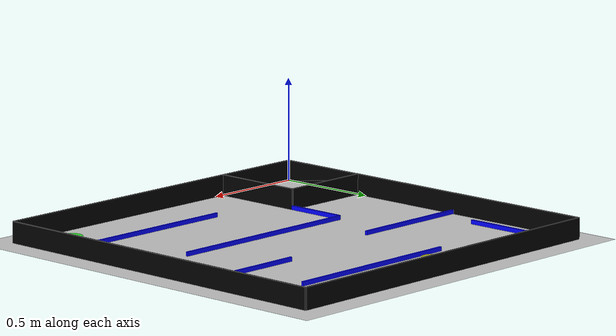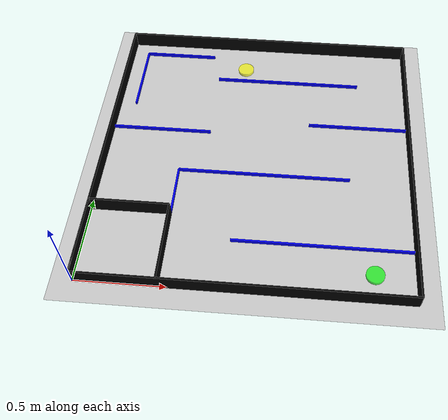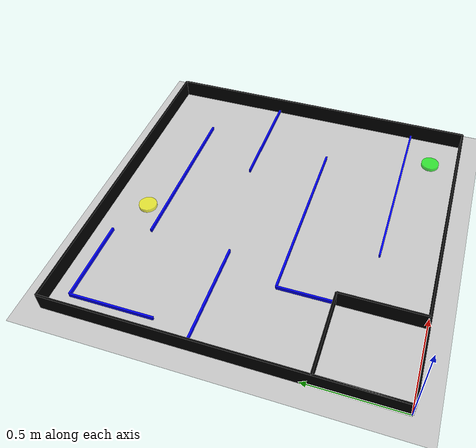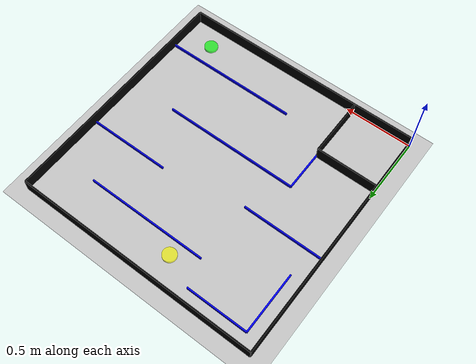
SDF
<?xml version="1.0"?>
<sdf version="1.6">
  <world name="maze_environment">

    <include>
      <uri>model://ground_plane</uri>
    </include>
    <include>
      <uri>model://sun</uri>
    </include>

    <plugin filename="libgazebo_ros_factory.so" name="gazebo_ros_factory"/>
    <plugin filename="libgazebo_ros_init.so" name="gazebo_ros_init"/>

    <scene>
      <ambient>0.7 0.7 0.7 1</ambient>
      <background>0.8 0.8 0.9 1</background>
      <shadows>false</shadows>
    </scene>

    <physics type="ode">
      <real_time_factor>1.0</real_time_factor>
      <real_time_update_rate>500</real_time_update_rate>
      <max_step_size>0.002</max_step_size>
      <ode>
        <solver>
          <type>quick</type>
        </solver>
      </ode>
    </physics>

    <model name="start_marker">
      <static>true</static>
      <pose>1.58 0.15 0.01 0 0 0</pose>
      <link name="link">
        <visual name="visual">
          <geometry>
            <cylinder>
              <radius>0.05</radius>
              <length>0.02</length>
            </cylinder>
          </geometry>
          <material>
            <ambient>0 1 0 0.7</ambient>
          </material>
        </visual>
      </link>
    </model>

    <model name="end_marker">
      <static>true</static>
      <pose>0.77 1.6 0.01 0 0 0</pose>
      <link name="link">
        <visual name="visual">
          <geometry>
            <cylinder>
              <radius>0.05</radius>
              <length>0.02</length>
            </cylinder>
          </geometry>
          <material>
            <ambient>1 1 0 0.7</ambient>
          </material>
        </visual>
      </link>
    </model>

    <model name="maze_walls">
  <static>true</static>
  <pose>0 0 0 0 0 0</pose>
  <link name="walls_link">
    <collision name="wall_AC"><geometry><box><size>0.01 1.8 0.1</size></box></geometry><pose>0 0.9 0.05 0 0 0</pose></collision>
    <collision name="wall_CD"><geometry><box><size>1.8 0.01 0.1</size></box></geometry><pose>0.9 1.8 0.05 0 0 0</pose></collision>
    <collision name="wall_DB"><geometry><box><size>0.01 1.8 0.1</size></box></geometry><pose>1.8 0.9 0.05 0 0 0</pose></collision>
    <collision name="wall_BA"><geometry><box><size>1.8 0.01 0.1</size></box></geometry><pose>0.9 0 0.05 0 0 0</pose></collision>
    <collision name="wall_AE"><geometry><box><size>0.01 0.45 0.1</size></box></geometry><pose>0 0.225 0.05 0 0 0</pose></collision>
    <collision name="wall_EF"><geometry><box><size>0.45 0.01 0.1</size></box></geometry><pose>0.225 0.45 0.05 0 0 0</pose></collision>
    <collision name="wall_FG"><geometry><box><size>0.01 0.45 0.1</size></box></geometry><pose>0.45 0.225 0.05 0 0 0</pose></collision>
    <visual name="wall_AC_v"><geometry><box><size>0.01 1.8 0.1</size></box></geometry><pose>0 0.9 0.05 0 0 0</pose><material><ambient>0 0 0 1</ambient></material></visual>
    <visual name="wall_CD_v"><geometry><box><size>1.8 0.01 0.1</size></box></geometry><pose>0.9 1.8 0.05 0 0 0</pose><material><ambient>0 0 0 1</ambient></material></visual>
    <visual name="wall_DB_v"><geometry><box><size>0.01 1.8 0.1</size></box></geometry><pose>1.8 0.9 0.05 0 0 0</pose><material><ambient>0 0 0 1</ambient></material></visual>
    <visual name="wall_BA_v"><geometry><box><size>1.8 0.01 0.1</size></box></geometry><pose>0.9 0 0.05 0 0 0</pose><material><ambient>0 0 0 1</ambient></material></visual>
    <visual name="wall_AE_v"><geometry><box><size>0.01 0.45 0.1</size></box></geometry><pose>0 0.225 0.05 0 0 0</pose><material><ambient>0 0 0 1</ambient></material></visual>
    <visual name="wall_EF_v"><geometry><box><size>0.45 0.01 0.1</size></box></geometry><pose>0.225 0.45 0.05 0 0 0</pose><material><ambient>0 0 0 1</ambient></material></visual>
    <visual name="wall_FG_v"><geometry><box><size>0.01 0.45 0.1</size></box></geometry><pose>0.45 0.225 0.05 0 0 0</pose><material><ambient>0 0 0 1</ambient></material></visual>
  </link>
</model>

    <model name="soft_wall_SR">
      <static>true</static>
      <pose>0.325 1.7 0.01 0 0 0</pose>
      <link name="link">
        <collision name="collision">
          <geometry><box><size>0.45 0.01 0.02</size></box></geometry>
        </collision>
        <visual name="visual">
          <geometry><box><size>0.45 0.01 0.02</size></box></geometry>
          <material><ambient>0 0 1 1</ambient></material>
        </visual>
      </link>
    </model>

    <model name="soft_wall_ST">
      <static>true</static>
      <pose>0.1 1.475 0.01 0 0 1.5708</pose>
      <link name="link">
        <collision name="collision">
          <geometry><box><size>0.45 0.01 0.02</size></box></geometry>
        </collision>
        <visual name="visual">
          <geometry><box><size>0.45 0.01 0.02</size></box></geometry>
          <material><ambient>0 0 1 1</ambient></material>
        </visual>
      </link>
    </model>

    <model name="soft_wall_IH">
      <static>true</static>
      <pose>1.05 1.5 0.01 0 0 0</pose>
      <link name="link">
        <collision name="collision">
          <geometry><box><size>0.9 0.01 0.02</size></box></geometry>
        </collision>
        <visual name="visual">
          <geometry><box><size>0.9 0.01 0.02</size></box></geometry>
          <material><ambient>0 0 1 1</ambient></material>
        </visual>
      </link>
    </model>

    <model name="soft_wall_N1K1">
      <static>true</static>
      <pose>1.5 1.15 0.01 0 0 0</pose>
      <link name="link">
        <collision name="collision">
          <geometry><box><size>0.6 0.01 0.02</size></box></geometry>
        </collision>
        <visual name="visual">
          <geometry><box><size>0.6 0.01 0.02</size></box></geometry>
          <material><ambient>0 0 1 1</ambient></material>
        </visual>
      </link>
    </model>

    <model name="soft_wall_NK">
      <static>true</static>
      <pose>0.3 1.05 0.01 0 0 0</pose>
      <link name="link">
        <collision name="collision">
          <geometry><box><size>0.6 0.01 0.02</size></box></geometry>
        </collision>
        <visual name="visual">
          <geometry><box><size>0.6 0.01 0.02</size></box></geometry>
          <material><ambient>0 0 1 1</ambient></material>
        </visual>
      </link>
    </model>

    <model name="soft_wall_ML">
      <static>true</static>
      <pose>1.3 0.3 0.01 0 0 0</pose>
      <link name="link">
        <collision name="collision">
          <geometry><box><size>1.0 0.01 0.02</size></box></geometry>
        </collision>
        <visual name="visual">
          <geometry><box><size>1.0 0.01 0.02</size></box></geometry>
          <material><ambient>0 0 1 1</ambient></material>
        </visual>
      </link>
    </model>

    <model name="soft_wall_M1L1">
      <static>true</static>
      <pose>0.95 0.75 0.01 0 0 0</pose>
      <link name="link">
        <collision name="collision">
          <geometry><box><size>1.0 0.01 0.02</size></box></geometry>
        </collision>
        <visual name="visual">
          <geometry><box><size>1.0 0.01 0.02</size></box></geometry>
          <material><ambient>0 0 1 1</ambient></material>
        </visual>
      </link>
    </model>

    <model name="soft_wall_M1F">
      <static>true</static>
      <pose>0.45 0.6 0.01 0 0 1.5708</pose>
      <link name="link">
        <collision name="collision">
          <geometry><box><size>0.3 0.01 0.02</size></box></geometry>
        </collision>
        <visual name="visual">
          <geometry><box><size>0.3 0.01 0.02</size></box></geometry>
          <material><ambient>0 0 1 1</ambient></material>
        </visual>
      </link>
    </model>

  </world>
</sdf>
